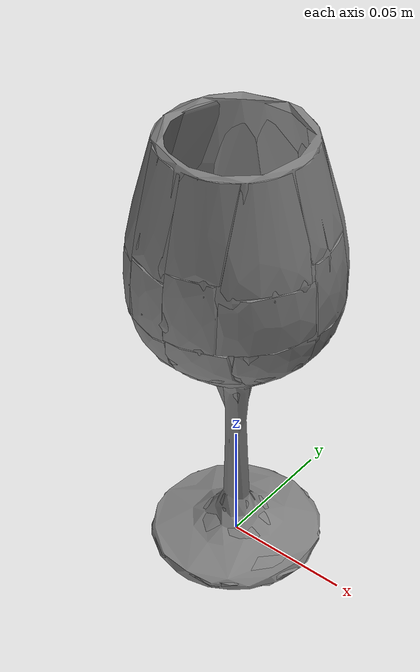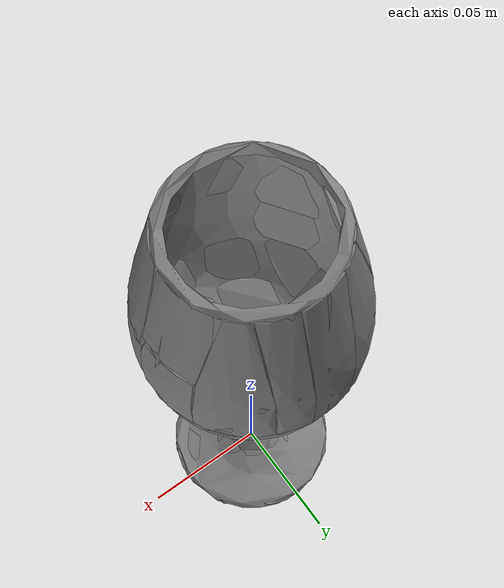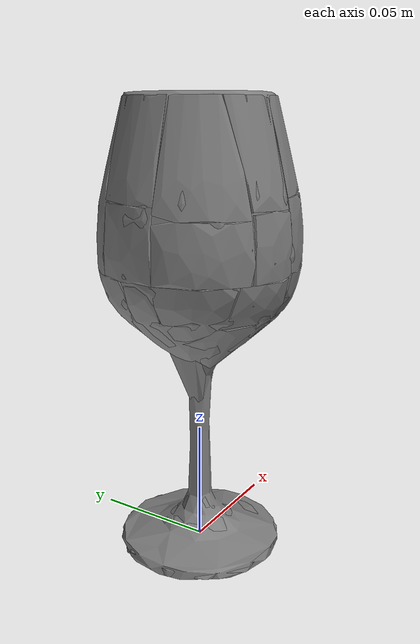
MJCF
<mujoco model="wine_glass3">
  <asset>
    <mesh file="../../meshes/train/wine_glass3/simple_mesh.stl" name="wine_glass3_mesh" scale="1 1 1"/>
    <mesh file="../../meshes/train/wine_glass3/wine_glass3_hull_1.stl" name="wine_glass3_hull_mesh_1" scale="1 1 1"/>
    <mesh file="../../meshes/train/wine_glass3/wine_glass3_hull_2.stl" name="wine_glass3_hull_mesh_2" scale="1 1 1"/>
    <mesh file="../../meshes/train/wine_glass3/wine_glass3_hull_3.stl" name="wine_glass3_hull_mesh_3" scale="1 1 1"/>
    <mesh file="../../meshes/train/wine_glass3/wine_glass3_hull_4.stl" name="wine_glass3_hull_mesh_4" scale="1 1 1"/>
    <mesh file="../../meshes/train/wine_glass3/wine_glass3_hull_5.stl" name="wine_glass3_hull_mesh_5" scale="1 1 1"/>
    <mesh file="../../meshes/train/wine_glass3/wine_glass3_hull_6.stl" name="wine_glass3_hull_mesh_6" scale="1 1 1"/>
    <mesh file="../../meshes/train/wine_glass3/wine_glass3_hull_7.stl" name="wine_glass3_hull_mesh_7" scale="1 1 1"/>
    <mesh file="../../meshes/train/wine_glass3/wine_glass3_hull_8.stl" name="wine_glass3_hull_mesh_8" scale="1 1 1"/>
    <mesh file="../../meshes/train/wine_glass3/wine_glass3_hull_9.stl" name="wine_glass3_hull_mesh_9" scale="1 1 1"/>
    <mesh file="../../meshes/train/wine_glass3/wine_glass3_hull_10.stl" name="wine_glass3_hull_mesh_10" scale="1 1 1"/>
    <mesh file="../../meshes/train/wine_glass3/wine_glass3_hull_11.stl" name="wine_glass3_hull_mesh_11" scale="1 1 1"/>
    <mesh file="../../meshes/train/wine_glass3/wine_glass3_hull_12.stl" name="wine_glass3_hull_mesh_12" scale="1 1 1"/>
    <mesh file="../../meshes/train/wine_glass3/wine_glass3_hull_13.stl" name="wine_glass3_hull_mesh_13" scale="1 1 1"/>
    <mesh file="../../meshes/train/wine_glass3/wine_glass3_hull_14.stl" name="wine_glass3_hull_mesh_14" scale="1 1 1"/>
    <mesh file="../../meshes/train/wine_glass3/wine_glass3_hull_15.stl" name="wine_glass3_hull_mesh_15" scale="1 1 1"/>
    <mesh file="../../meshes/train/wine_glass3/wine_glass3_hull_16.stl" name="wine_glass3_hull_mesh_16" scale="1 1 1"/>
    <mesh file="../../meshes/train/wine_glass3/wine_glass3_hull_17.stl" name="wine_glass3_hull_mesh_17" scale="1 1 1"/>
    <mesh file="../../meshes/train/wine_glass3/wine_glass3_hull_18.stl" name="wine_glass3_hull_mesh_18" scale="1 1 1"/>
    <mesh file="../../meshes/train/wine_glass3/wine_glass3_hull_19.stl" name="wine_glass3_hull_mesh_19" scale="1 1 1"/>
    <mesh file="../../meshes/train/wine_glass3/wine_glass3_hull_20.stl" name="wine_glass3_hull_mesh_20" scale="1 1 1"/>
    <mesh file="../../meshes/train/wine_glass3/wine_glass3_hull_21.stl" name="wine_glass3_hull_mesh_21" scale="1 1 1"/>
    <mesh file="../../meshes/train/wine_glass3/wine_glass3_hull_22.stl" name="wine_glass3_hull_mesh_22" scale="1 1 1"/>
    <mesh file="../../meshes/train/wine_glass3/wine_glass3_hull_23.stl" name="wine_glass3_hull_mesh_23" scale="1 1 1"/>
    <mesh file="../../meshes/train/wine_glass3/wine_glass3_hull_24.stl" name="wine_glass3_hull_mesh_24" scale="1 1 1"/>
    <mesh file="../../meshes/train/wine_glass3/wine_glass3_hull_25.stl" name="wine_glass3_hull_mesh_25" scale="1 1 1"/>
    <mesh file="../../meshes/train/wine_glass3/wine_glass3_hull_26.stl" name="wine_glass3_hull_mesh_26" scale="1 1 1"/>
    <mesh file="../../meshes/train/wine_glass3/wine_glass3_hull_27.stl" name="wine_glass3_hull_mesh_27" scale="1 1 1"/>
    <mesh file="../../meshes/train/wine_glass3/wine_glass3_hull_28.stl" name="wine_glass3_hull_mesh_28" scale="1 1 1"/>
    <mesh file="../../meshes/train/wine_glass3/wine_glass3_hull_29.stl" name="wine_glass3_hull_mesh_29" scale="1 1 1"/>
    <mesh file="../../meshes/train/wine_glass3/wine_glass3_hull_30.stl" name="wine_glass3_hull_mesh_30" scale="1 1 1"/>
    <mesh file="../../meshes/train/wine_glass3/wine_glass3_hull_31.stl" name="wine_glass3_hull_mesh_31" scale="1 1 1"/>
    <mesh file="../../meshes/train/wine_glass3/wine_glass3_hull_32.stl" name="wine_glass3_hull_mesh_32" scale="1 1 1"/>
    <mesh file="../../meshes/train/wine_glass3/wine_glass3_hull_33.stl" name="wine_glass3_hull_mesh_33" scale="1 1 1"/>
  </asset>
  <worldbody>
    <body>
      <body name="object">
        <geom pos="0 0 0" mesh="wine_glass3_mesh" type="mesh" contype="0" conaffinity="0" group="1"/>
        <geom pos="0 0 0" mesh="wine_glass3_hull_mesh_1" type="mesh" margin="0.001" solimp="0.998 0.998 0.001" solref="0.001 1" density="2000" friction="0.95 0.3 0.1" group="0" condim="4"/>
        <geom pos="0 0 0" mesh="wine_glass3_hull_mesh_2" type="mesh" margin="0.001" solimp="0.998 0.998 0.001" solref="0.001 1" density="2000" friction="0.95 0.3 0.1" group="0" condim="4"/>
        <geom pos="0 0 0" mesh="wine_glass3_hull_mesh_3" type="mesh" margin="0.001" solimp="0.998 0.998 0.001" solref="0.001 1" density="2000" friction="0.95 0.3 0.1" group="0" condim="4"/>
        <geom pos="0 0 0" mesh="wine_glass3_hull_mesh_4" type="mesh" margin="0.001" solimp="0.998 0.998 0.001" solref="0.001 1" density="2000" friction="0.95 0.3 0.1" group="0" condim="4"/>
        <geom pos="0 0 0" mesh="wine_glass3_hull_mesh_5" type="mesh" margin="0.001" solimp="0.998 0.998 0.001" solref="0.001 1" density="2000" friction="0.95 0.3 0.1" group="0" condim="4"/>
        <geom pos="0 0 0" mesh="wine_glass3_hull_mesh_6" type="mesh" margin="0.001" solimp="0.998 0.998 0.001" solref="0.001 1" density="2000" friction="0.95 0.3 0.1" group="0" condim="4"/>
        <geom pos="0 0 0" mesh="wine_glass3_hull_mesh_7" type="mesh" margin="0.001" solimp="0.998 0.998 0.001" solref="0.001 1" density="2000" friction="0.95 0.3 0.1" group="0" condim="4"/>
        <geom pos="0 0 0" mesh="wine_glass3_hull_mesh_8" type="mesh" margin="0.001" solimp="0.998 0.998 0.001" solref="0.001 1" density="2000" friction="0.95 0.3 0.1" group="0" condim="4"/>
        <geom pos="0 0 0" mesh="wine_glass3_hull_mesh_9" type="mesh" margin="0.001" solimp="0.998 0.998 0.001" solref="0.001 1" density="2000" friction="0.95 0.3 0.1" group="0" condim="4"/>
        <geom pos="0 0 0" mesh="wine_glass3_hull_mesh_10" type="mesh" margin="0.001" solimp="0.998 0.998 0.001" solref="0.001 1" density="2000" friction="0.95 0.3 0.1" group="0" condim="4"/>
        <geom pos="0 0 0" mesh="wine_glass3_hull_mesh_11" type="mesh" margin="0.001" solimp="0.998 0.998 0.001" solref="0.001 1" density="2000" friction="0.95 0.3 0.1" group="0" condim="4"/>
        <geom pos="0 0 0" mesh="wine_glass3_hull_mesh_12" type="mesh" margin="0.001" solimp="0.998 0.998 0.001" solref="0.001 1" density="2000" friction="0.95 0.3 0.1" group="0" condim="4"/>
        <geom pos="0 0 0" mesh="wine_glass3_hull_mesh_13" type="mesh" margin="0.001" solimp="0.998 0.998 0.001" solref="0.001 1" density="2000" friction="0.95 0.3 0.1" group="0" condim="4"/>
        <geom pos="0 0 0" mesh="wine_glass3_hull_mesh_14" type="mesh" margin="0.001" solimp="0.998 0.998 0.001" solref="0.001 1" density="2000" friction="0.95 0.3 0.1" group="0" condim="4"/>
        <geom pos="0 0 0" mesh="wine_glass3_hull_mesh_15" type="mesh" margin="0.001" solimp="0.998 0.998 0.001" solref="0.001 1" density="2000" friction="0.95 0.3 0.1" group="0" condim="4"/>
        <geom pos="0 0 0" mesh="wine_glass3_hull_mesh_16" type="mesh" margin="0.001" solimp="0.998 0.998 0.001" solref="0.001 1" density="2000" friction="0.95 0.3 0.1" group="0" condim="4"/>
        <geom pos="0 0 0" mesh="wine_glass3_hull_mesh_17" type="mesh" margin="0.001" solimp="0.998 0.998 0.001" solref="0.001 1" density="2000" friction="0.95 0.3 0.1" group="0" condim="4"/>
        <geom pos="0 0 0" mesh="wine_glass3_hull_mesh_18" type="mesh" margin="0.001" solimp="0.998 0.998 0.001" solref="0.001 1" density="2000" friction="0.95 0.3 0.1" group="0" condim="4"/>
        <geom pos="0 0 0" mesh="wine_glass3_hull_mesh_19" type="mesh" margin="0.001" solimp="0.998 0.998 0.001" solref="0.001 1" density="2000" friction="0.95 0.3 0.1" group="0" condim="4"/>
        <geom pos="0 0 0" mesh="wine_glass3_hull_mesh_20" type="mesh" margin="0.001" solimp="0.998 0.998 0.001" solref="0.001 1" density="2000" friction="0.95 0.3 0.1" group="0" condim="4"/>
        <geom pos="0 0 0" mesh="wine_glass3_hull_mesh_21" type="mesh" margin="0.001" solimp="0.998 0.998 0.001" solref="0.001 1" density="2000" friction="0.95 0.3 0.1" group="0" condim="4"/>
        <geom pos="0 0 0" mesh="wine_glass3_hull_mesh_22" type="mesh" margin="0.001" solimp="0.998 0.998 0.001" solref="0.001 1" density="2000" friction="0.95 0.3 0.1" group="0" condim="4"/>
        <geom pos="0 0 0" mesh="wine_glass3_hull_mesh_23" type="mesh" margin="0.001" solimp="0.998 0.998 0.001" solref="0.001 1" density="2000" friction="0.95 0.3 0.1" group="0" condim="4"/>
        <geom pos="0 0 0" mesh="wine_glass3_hull_mesh_24" type="mesh" margin="0.001" solimp="0.998 0.998 0.001" solref="0.001 1" density="2000" friction="0.95 0.3 0.1" group="0" condim="4"/>
        <geom pos="0 0 0" mesh="wine_glass3_hull_mesh_25" type="mesh" margin="0.001" solimp="0.998 0.998 0.001" solref="0.001 1" density="2000" friction="0.95 0.3 0.1" group="0" condim="4"/>
        <geom pos="0 0 0" mesh="wine_glass3_hull_mesh_26" type="mesh" margin="0.001" solimp="0.998 0.998 0.001" solref="0.001 1" density="2000" friction="0.95 0.3 0.1" group="0" condim="4"/>
        <geom pos="0 0 0" mesh="wine_glass3_hull_mesh_27" type="mesh" margin="0.001" solimp="0.998 0.998 0.001" solref="0.001 1" density="2000" friction="0.95 0.3 0.1" group="0" condim="4"/>
        <geom pos="0 0 0" mesh="wine_glass3_hull_mesh_28" type="mesh" margin="0.001" solimp="0.998 0.998 0.001" solref="0.001 1" density="2000" friction="0.95 0.3 0.1" group="0" condim="4"/>
        <geom pos="0 0 0" mesh="wine_glass3_hull_mesh_29" type="mesh" margin="0.001" solimp="0.998 0.998 0.001" solref="0.001 1" density="2000" friction="0.95 0.3 0.1" group="0" condim="4"/>
        <geom pos="0 0 0" mesh="wine_glass3_hull_mesh_30" type="mesh" margin="0.001" solimp="0.998 0.998 0.001" solref="0.001 1" density="2000" friction="0.95 0.3 0.1" group="0" condim="4"/>
        <geom pos="0 0 0" mesh="wine_glass3_hull_mesh_31" type="mesh" margin="0.001" solimp="0.998 0.998 0.001" solref="0.001 1" density="2000" friction="0.95 0.3 0.1" group="0" condim="4"/>
        <geom pos="0 0 0" mesh="wine_glass3_hull_mesh_32" type="mesh" margin="0.001" solimp="0.998 0.998 0.001" solref="0.001 1" density="2000" friction="0.95 0.3 0.1" group="0" condim="4"/>
        <geom pos="0 0 0" mesh="wine_glass3_hull_mesh_33" type="mesh" margin="0.001" solimp="0.998 0.998 0.001" solref="0.001 1" density="2000" friction="0.95 0.3 0.1" group="0" condim="4"/>
      </body>
      <site rgba="0 0 0 0" size="0.005" pos="0 0 -0.001" name="bottom_site"/>
      <site rgba="0 0 0 0" size="0.005" pos="0 0 0.02" name="top_site"/>
      <site rgba="0 0 0 0" size="0.005" pos="0.0375 0.02 0" name="horizontal_radius_site"/>
    </body>
  </worldbody>
</mujoco>
